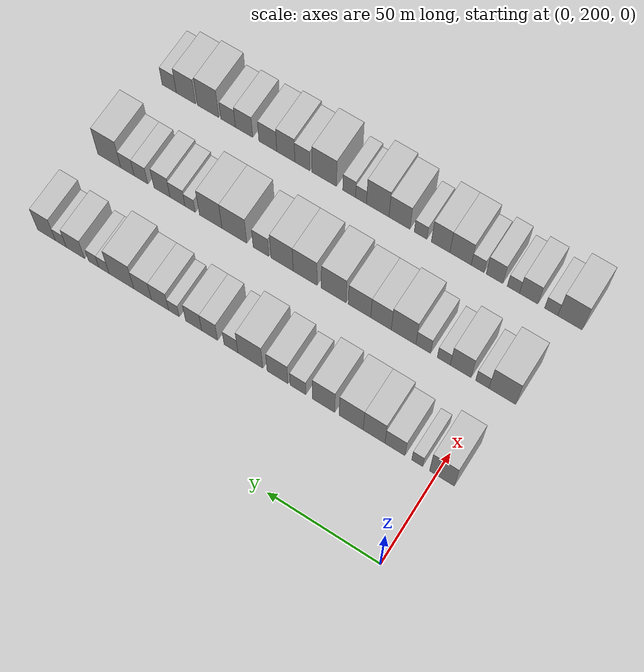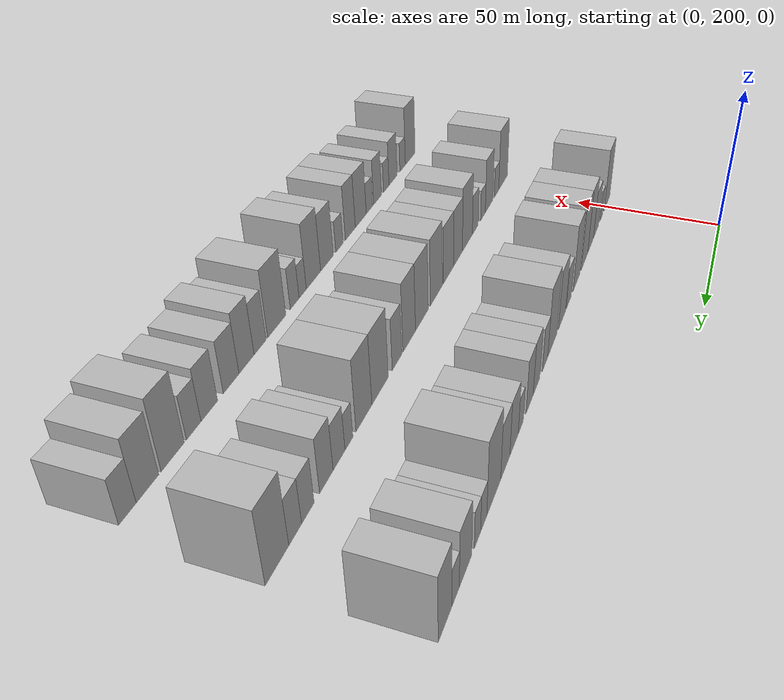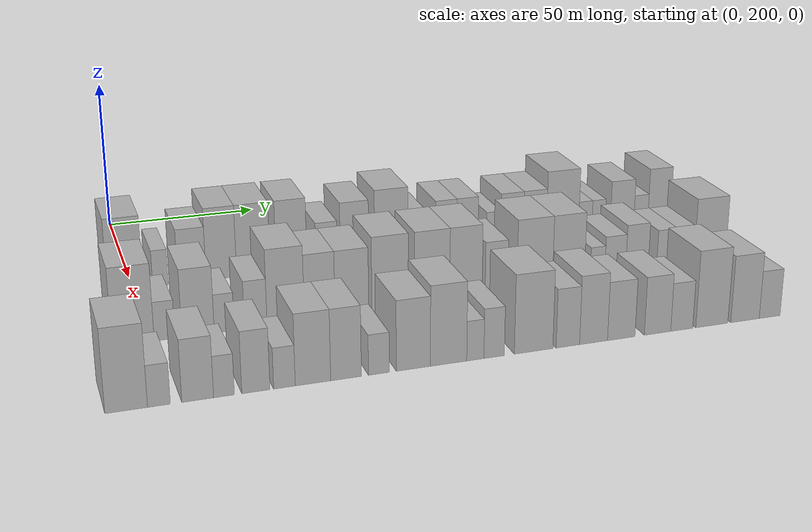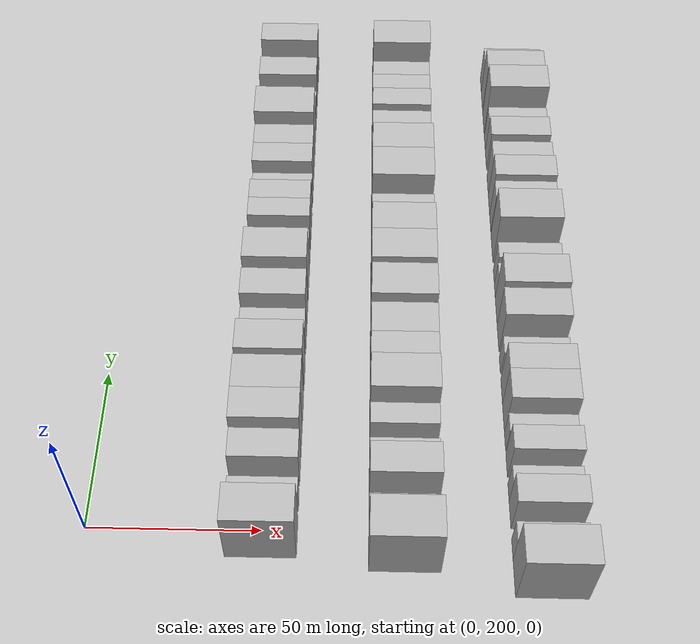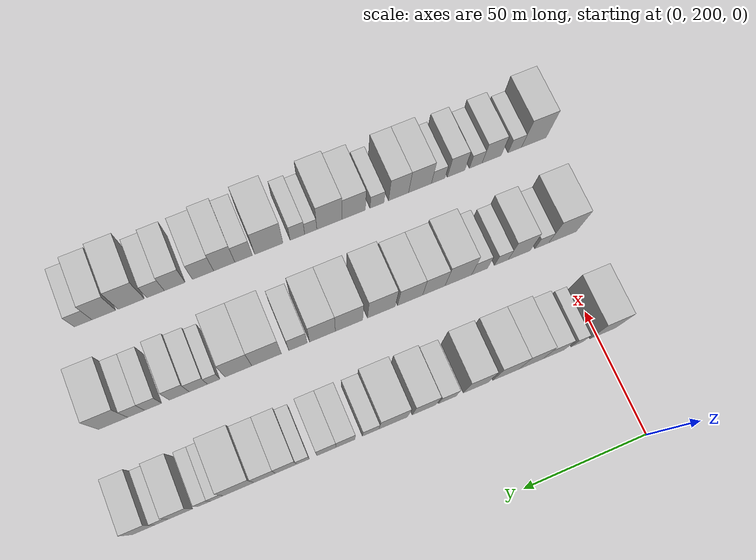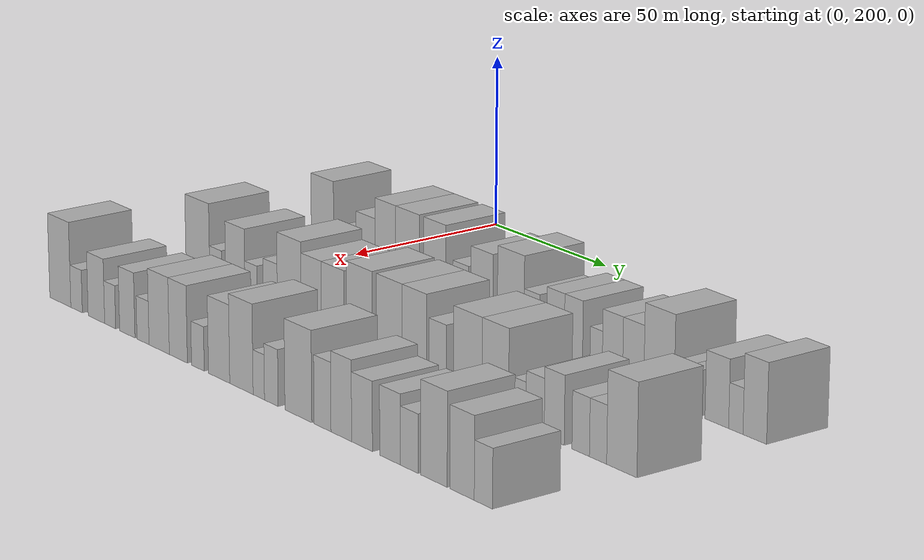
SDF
<sdf version="1.6">
 <world name="default">
  <model name="building_62">
   <static>1</static>
   <pose>50.0000 197.6228 0 0.000000 0.000000 0.000000</pose>
   <link name="link">
    <pose>0 0 12.00 0 0 0</pose>
    <collision name="collision"><geometry><box><size>20.0000 10.9696 24.0000</size></box></geometry></collision>
    <visual name="visual">
     <cast_shadows>0</cast_shadows>
     <geometry><box><size>20.0000 10.9696 24.0000</size></box></geometry>
     <material>
      <script>
       <uri>model://HANNAS_wall/materials/scripts</uri>
       <uri>model://HANNAS_wall/materials/textures</uri>
       <name>vrc/HANNAS_wall</name>
      </script>
     </material>
    </visual>
   </link>
  </model>
  <model name="building_63">
   <static>1</static>
   <pose>50.0000 208.5299 0 0.000000 0.000000 0.000000</pose>
   <link name="link">
    <pose>0 0 6.00 0 0 0</pose>
    <collision name="collision"><geometry><box><size>20.0000 4.8445 12.0000</size></box></geometry></collision>
    <visual name="visual">
     <cast_shadows>0</cast_shadows>
     <geometry><box><size>20.0000 4.8445 12.0000</size></box></geometry>
     <material>
      <script>
       <uri>model://HANNAS_wall/materials/scripts</uri>
       <uri>model://HANNAS_wall/materials/textures</uri>
       <name>vrc/HANNAS_wall</name>
      </script>
     </material>
    </visual>
   </link>
  </model>
  <model name="building_64">
   <static>1</static>
   <pose>50.0000 218.4184 0 0.000000 0.000000 0.000000</pose>
   <link name="link">
    <pose>0 0 9.00 0 0 0</pose>
    <collision name="collision"><geometry><box><size>20.0000 8.9326 18.0000</size></box></geometry></collision>
    <visual name="visual">
     <cast_shadows>0</cast_shadows>
     <geometry><box><size>20.0000 8.9326 18.0000</size></box></geometry>
     <material>
      <script>
       <uri>model://HANNAS_wall/materials/scripts</uri>
       <uri>model://HANNAS_wall/materials/textures</uri>
       <name>vrc/HANNAS_wall</name>
      </script>
     </material>
    </visual>
   </link>
  </model>
  <model name="building_65">
   <static>1</static>
   <pose>50.0000 227.7537 0 0.000000 0.000000 0.000000</pose>
   <link name="link">
    <pose>0 0 12.00 0 0 0</pose>
    <collision name="collision"><geometry><box><size>20.0000 9.7380 24.0000</size></box></geometry></collision>
    <visual name="visual">
     <cast_shadows>0</cast_shadows>
     <geometry><box><size>20.0000 9.7380 24.0000</size></box></geometry>
     <material>
      <script>
       <uri>model://HANNAS_wall/materials/scripts</uri>
       <uri>model://HANNAS_wall/materials/textures</uri>
       <name>vrc/HANNAS_wall</name>
      </script>
     </material>
    </visual>
   </link>
  </model>
  <model name="building_66">
   <static>1</static>
   <pose>50.0000 238.0365 0 0.000000 0.000000 0.000000</pose>
   <link name="link">
    <pose>0 0 12.00 0 0 0</pose>
    <collision name="collision"><geometry><box><size>20.0000 10.8275 24.0000</size></box></geometry></collision>
    <visual name="visual">
     <cast_shadows>0</cast_shadows>
     <geometry><box><size>20.0000 10.8275 24.0000</size></box></geometry>
     <material>
      <script>
       <uri>model://HANNAS_wall/materials/scripts</uri>
       <uri>model://HANNAS_wall/materials/textures</uri>
       <name>vrc/HANNAS_wall</name>
      </script>
     </material>
    </visual>
   </link>
  </model>
  <model name="building_67">
   <static>1</static>
   <pose>50.0000 250.5068 0 0.000000 0.000000 0.000000</pose>
   <link name="link">
    <pose>0 0 12.00 0 0 0</pose>
    <collision name="collision"><geometry><box><size>20.0000 10.1131 24.0000</size></box></geometry></collision>
    <visual name="visual">
     <cast_shadows>0</cast_shadows>
     <geometry><box><size>20.0000 10.1131 24.0000</size></box></geometry>
     <material>
      <script>
       <uri>model://HANNAS_wall/materials/scripts</uri>
       <uri>model://HANNAS_wall/materials/textures</uri>
       <name>vrc/HANNAS_wall</name>
      </script>
     </material>
    </visual>
   </link>
  </model>
  <model name="building_68">
   <static>1</static>
   <pose>50.0000 262.1444 0 0.000000 0.000000 0.000000</pose>
   <link name="link">
    <pose>0 0 7.50 0 0 0</pose>
    <collision name="collision"><geometry><box><size>20.0000 7.1622 15.0000</size></box></geometry></collision>
    <visual name="visual">
     <cast_shadows>0</cast_shadows>
     <geometry><box><size>20.0000 7.1622 15.0000</size></box></geometry>
     <material>
      <script>
       <uri>model://HANNAS_wall/materials/scripts</uri>
       <uri>model://HANNAS_wall/materials/textures</uri>
       <name>vrc/HANNAS_wall</name>
      </script>
     </material>
    </visual>
   </link>
  </model>
  <model name="building_69">
   <static>1</static>
   <pose>50.0000 271.5165 0 0.000000 0.000000 0.000000</pose>
   <link name="link">
    <pose>0 0 10.50 0 0 0</pose>
    <collision name="collision"><geometry><box><size>20.0000 9.5820 21.0000</size></box></geometry></collision>
    <visual name="visual">
     <cast_shadows>0</cast_shadows>
     <geometry><box><size>20.0000 9.5820 21.0000</size></box></geometry>
     <material>
      <script>
       <uri>model://HANNAS_wall/materials/scripts</uri>
       <uri>model://HANNAS_wall/materials/textures</uri>
       <name>vrc/HANNAS_wall</name>
      </script>
     </material>
    </visual>
   </link>
  </model>
  <model name="building_70">
   <static>1</static>
   <pose>50.0000 284.0442 0 0.000000 0.000000 0.000000</pose>
   <link name="link">
    <pose>0 0 12.00 0 0 0</pose>
    <collision name="collision"><geometry><box><size>20.0000 11.4734 24.0000</size></box></geometry></collision>
    <visual name="visual">
     <cast_shadows>0</cast_shadows>
     <geometry><box><size>20.0000 11.4734 24.0000</size></box></geometry>
     <material>
      <script>
       <uri>model://HANNAS_wall/materials/scripts</uri>
       <uri>model://HANNAS_wall/materials/textures</uri>
       <name>vrc/HANNAS_wall</name>
      </script>
     </material>
    </visual>
   </link>
  </model>
  <model name="building_71">
   <static>1</static>
   <pose>50.0000 293.0265 0 0.000000 0.000000 0.000000</pose>
   <link name="link">
    <pose>0 0 7.50 0 0 0</pose>
    <collision name="collision"><geometry><box><size>20.0000 6.4911 15.0000</size></box></geometry></collision>
    <visual name="visual">
     <cast_shadows>0</cast_shadows>
     <geometry><box><size>20.0000 6.4911 15.0000</size></box></geometry>
     <material>
      <script>
       <uri>model://HANNAS_wall/materials/scripts</uri>
       <uri>model://HANNAS_wall/materials/textures</uri>
       <name>vrc/HANNAS_wall</name>
      </script>
     </material>
    </visual>
   </link>
  </model>
  <model name="building_72">
   <static>1</static>
   <pose>50.0000 302.9918 0 0.000000 0.000000 0.000000</pose>
   <link name="link">
    <pose>0 0 9.00 0 0 0</pose>
    <collision name="collision"><geometry><box><size>20.0000 7.4396 18.0000</size></box></geometry></collision>
    <visual name="visual">
     <cast_shadows>0</cast_shadows>
     <geometry><box><size>20.0000 7.4396 18.0000</size></box></geometry>
     <material>
      <script>
       <uri>model://HANNAS_wall/materials/scripts</uri>
       <uri>model://HANNAS_wall/materials/textures</uri>
       <name>vrc/HANNAS_wall</name>
      </script>
     </material>
    </visual>
   </link>
  </model>
  <model name="building_73">
   <static>1</static>
   <pose>50.0000 310.4910 0 0.000000 0.000000 0.000000</pose>
   <link name="link">
    <pose>0 0 9.00 0 0 0</pose>
    <collision name="collision"><geometry><box><size>20.0000 7.5588 18.0000</size></box></geometry></collision>
    <visual name="visual">
     <cast_shadows>0</cast_shadows>
     <geometry><box><size>20.0000 7.5588 18.0000</size></box></geometry>
     <material>
      <script>
       <uri>model://HANNAS_wall/materials/scripts</uri>
       <uri>model://HANNAS_wall/materials/textures</uri>
       <name>vrc/HANNAS_wall</name>
      </script>
     </material>
    </visual>
   </link>
  </model>
  <model name="building_74">
   <static>1</static>
   <pose>50.0000 319.7879 0 0.000000 0.000000 0.000000</pose>
   <link name="link">
    <pose>0 0 6.00 0 0 0</pose>
    <collision name="collision"><geometry><box><size>20.0000 5.0349 12.0000</size></box></geometry></collision>
    <visual name="visual">
     <cast_shadows>0</cast_shadows>
     <geometry><box><size>20.0000 5.0349 12.0000</size></box></geometry>
     <material>
      <script>
       <uri>model://HANNAS_wall/materials/scripts</uri>
       <uri>model://HANNAS_wall/materials/textures</uri>
       <name>vrc/HANNAS_wall</name>
      </script>
     </material>
    </visual>
   </link>
  </model>
  <model name="building_75">
   <static>1</static>
   <pose>50.0000 326.3965 0 0.000000 0.000000 0.000000</pose>
   <link name="link">
    <pose>0 0 9.00 0 0 0</pose>
    <collision name="collision"><geometry><box><size>20.0000 8.1823 18.0000</size></box></geometry></collision>
    <visual name="visual">
     <cast_shadows>0</cast_shadows>
     <geometry><box><size>20.0000 8.1823 18.0000</size></box></geometry>
     <material>
      <script>
       <uri>model://HANNAS_wall/materials/scripts</uri>
       <uri>model://HANNAS_wall/materials/textures</uri>
       <name>vrc/HANNAS_wall</name>
      </script>
     </material>
    </visual>
   </link>
  </model>
  <model name="building_76">
   <static>1</static>
   <pose>50.0000 334.6937 0 0.000000 0.000000 0.000000</pose>
   <link name="link">
    <pose>0 0 9.00 0 0 0</pose>
    <collision name="collision"><geometry><box><size>20.0000 8.4121 18.0000</size></box></geometry></collision>
    <visual name="visual">
     <cast_shadows>0</cast_shadows>
     <geometry><box><size>20.0000 8.4121 18.0000</size></box></geometry>
     <material>
      <script>
       <uri>model://HANNAS_wall/materials/scripts</uri>
       <uri>model://HANNAS_wall/materials/textures</uri>
       <name>vrc/HANNAS_wall</name>
      </script>
     </material>
    </visual>
   </link>
  </model>
  <model name="building_77">
   <static>1</static>
   <pose>50.0000 344.8178 0 0.000000 0.000000 0.000000</pose>
   <link name="link">
    <pose>0 0 12.00 0 0 0</pose>
    <collision name="collision"><geometry><box><size>20.0000 11.8361 24.0000</size></box></geometry></collision>
    <visual name="visual">
     <cast_shadows>0</cast_shadows>
     <geometry><box><size>20.0000 11.8361 24.0000</size></box></geometry>
     <material>
      <script>
       <uri>model://HANNAS_wall/materials/scripts</uri>
       <uri>model://HANNAS_wall/materials/textures</uri>
       <name>vrc/HANNAS_wall</name>
      </script>
     </material>
    </visual>
   </link>
  </model>
  <model name="building_78">
   <static>1</static>
   <pose>50.0000 353.2116 0 0.000000 0.000000 0.000000</pose>
   <link name="link">
    <pose>0 0 6.00 0 0 0</pose>
    <collision name="collision"><geometry><box><size>20.0000 4.9516 12.0000</size></box></geometry></collision>
    <visual name="visual">
     <cast_shadows>0</cast_shadows>
     <geometry><box><size>20.0000 4.9516 12.0000</size></box></geometry>
     <material>
      <script>
       <uri>model://HANNAS_wall/materials/scripts</uri>
       <uri>model://HANNAS_wall/materials/textures</uri>
       <name>vrc/HANNAS_wall</name>
      </script>
     </material>
    </visual>
   </link>
  </model>
  <model name="building_79">
   <static>1</static>
   <pose>50.0000 358.1471 0 0.000000 0.000000 0.000000</pose>
   <link name="link">
    <pose>0 0 6.00 0 0 0</pose>
    <collision name="collision"><geometry><box><size>20.0000 4.9195 12.0000</size></box></geometry></collision>
    <visual name="visual">
     <cast_shadows>0</cast_shadows>
     <geometry><box><size>20.0000 4.9195 12.0000</size></box></geometry>
     <material>
      <script>
       <uri>model://HANNAS_wall/materials/scripts</uri>
       <uri>model://HANNAS_wall/materials/textures</uri>
       <name>vrc/HANNAS_wall</name>
      </script>
     </material>
    </visual>
   </link>
  </model>
  <model name="building_80">
   <static>1</static>
   <pose>50.0000 367.0509 0 0.000000 0.000000 0.000000</pose>
   <link name="link">
    <pose>0 0 9.00 0 0 0</pose>
    <collision name="collision"><geometry><box><size>20.0000 8.8882 18.0000</size></box></geometry></collision>
    <visual name="visual">
     <cast_shadows>0</cast_shadows>
     <geometry><box><size>20.0000 8.8882 18.0000</size></box></geometry>
     <material>
      <script>
       <uri>model://HANNAS_wall/materials/scripts</uri>
       <uri>model://HANNAS_wall/materials/textures</uri>
       <name>vrc/HANNAS_wall</name>
      </script>
     </material>
    </visual>
   </link>
  </model>
  <model name="building_81">
   <static>1</static>
   <pose>50.0000 374.1630 0 0.000000 0.000000 0.000000</pose>
   <link name="link">
    <pose>0 0 6.00 0 0 0</pose>
    <collision name="collision"><geometry><box><size>20.0000 5.3360 12.0000</size></box></geometry></collision>
    <visual name="visual">
     <cast_shadows>0</cast_shadows>
     <geometry><box><size>20.0000 5.3360 12.0000</size></box></geometry>
     <material>
      <script>
       <uri>model://HANNAS_wall/materials/scripts</uri>
       <uri>model://HANNAS_wall/materials/textures</uri>
       <name>vrc/HANNAS_wall</name>
      </script>
     </material>
    </visual>
   </link>
  </model>
  <model name="building_82">
   <static>1</static>
   <pose>50.0000 381.1756 0 0.000000 0.000000 0.000000</pose>
   <link name="link">
    <pose>0 0 10.50 0 0 0</pose>
    <collision name="collision"><geometry><box><size>20.0000 8.6892 21.0000</size></box></geometry></collision>
    <visual name="visual">
     <cast_shadows>0</cast_shadows>
     <geometry><box><size>20.0000 8.6892 21.0000</size></box></geometry>
     <material>
      <script>
       <uri>model://HANNAS_wall/materials/scripts</uri>
       <uri>model://HANNAS_wall/materials/textures</uri>
       <name>vrc/HANNAS_wall</name>
      </script>
     </material>
    </visual>
   </link>
  </model>
  <model name="building_150">
   <static>1</static>
   <pose>90.0000 194.7489 0 0.000000 0.000000 0.000000</pose>
   <link name="link">
    <pose>0 0 12.00 0 0 0</pose>
    <collision name="collision"><geometry><box><size>20.0000 11.9108 24.0000</size></box></geometry></collision>
    <visual name="visual">
     <cast_shadows>0</cast_shadows>
     <geometry><box><size>20.0000 11.9108 24.0000</size></box></geometry>
     <material>
      <script>
       <uri>model://HANNAS_wall/materials/scripts</uri>
       <uri>model://HANNAS_wall/materials/textures</uri>
       <name>vrc/HANNAS_wall</name>
      </script>
     </material>
    </visual>
   </link>
  </model>
  <model name="building_151">
   <static>1</static>
   <pose>90.0000 203.6814 0 0.000000 0.000000 0.000000</pose>
   <link name="link">
    <pose>0 0 6.00 0 0 0</pose>
    <collision name="collision"><geometry><box><size>20.0000 5.9541 12.0000</size></box></geometry></collision>
    <visual name="visual">
     <cast_shadows>0</cast_shadows>
     <geometry><box><size>20.0000 5.9541 12.0000</size></box></geometry>
     <material>
      <script>
       <uri>model://HANNAS_wall/materials/scripts</uri>
       <uri>model://HANNAS_wall/materials/textures</uri>
       <name>vrc/HANNAS_wall</name>
      </script>
     </material>
    </visual>
   </link>
  </model>
  <model name="building_152">
   <static>1</static>
   <pose>90.0000 213.3597 0 0.000000 0.000000 0.000000</pose>
   <link name="link">
    <pose>0 0 10.50 0 0 0</pose>
    <collision name="collision"><geometry><box><size>20.0000 9.4025 21.0000</size></box></geometry></collision>
    <visual name="visual">
     <cast_shadows>0</cast_shadows>
     <geometry><box><size>20.0000 9.4025 21.0000</size></box></geometry>
     <material>
      <script>
       <uri>model://HANNAS_wall/materials/scripts</uri>
       <uri>model://HANNAS_wall/materials/textures</uri>
       <name>vrc/HANNAS_wall</name>
      </script>
     </material>
    </visual>
   </link>
  </model>
  <model name="building_153">
   <static>1</static>
   <pose>90.0000 220.9884 0 0.000000 0.000000 0.000000</pose>
   <link name="link">
    <pose>0 0 6.00 0 0 0</pose>
    <collision name="collision"><geometry><box><size>20.0000 5.8549 12.0000</size></box></geometry></collision>
    <visual name="visual">
     <cast_shadows>0</cast_shadows>
     <geometry><box><size>20.0000 5.8549 12.0000</size></box></geometry>
     <material>
      <script>
       <uri>model://HANNAS_wall/materials/scripts</uri>
       <uri>model://HANNAS_wall/materials/textures</uri>
       <name>vrc/HANNAS_wall</name>
      </script>
     </material>
    </visual>
   </link>
  </model>
  <model name="building_154">
   <static>1</static>
   <pose>90.0000 230.2766 0 0.000000 0.000000 0.000000</pose>
   <link name="link">
    <pose>0 0 7.50 0 0 0</pose>
    <collision name="collision"><geometry><box><size>20.0000 6.7215 15.0000</size></box></geometry></collision>
    <visual name="visual">
     <cast_shadows>0</cast_shadows>
     <geometry><box><size>20.0000 6.7215 15.0000</size></box></geometry>
     <material>
      <script>
       <uri>model://HANNAS_wall/materials/scripts</uri>
       <uri>model://HANNAS_wall/materials/textures</uri>
       <name>vrc/HANNAS_wall</name>
      </script>
     </material>
    </visual>
   </link>
  </model>
  <model name="building_155">
   <static>1</static>
   <pose>90.0000 239.2323 0 0.000000 0.000000 0.000000</pose>
   <link name="link">
    <pose>0 0 12.00 0 0 0</pose>
    <collision name="collision"><geometry><box><size>20.0000 11.1899 24.0000</size></box></geometry></collision>
    <visual name="visual">
     <cast_shadows>0</cast_shadows>
     <geometry><box><size>20.0000 11.1899 24.0000</size></box></geometry>
     <material>
      <script>
       <uri>model://HANNAS_wall/materials/scripts</uri>
       <uri>model://HANNAS_wall/materials/textures</uri>
       <name>vrc/HANNAS_wall</name>
      </script>
     </material>
    </visual>
   </link>
  </model>
  <model name="building_156">
   <static>1</static>
   <pose>90.0000 249.5236 0 0.000000 0.000000 0.000000</pose>
   <link name="link">
    <pose>0 0 10.50 0 0 0</pose>
    <collision name="collision"><geometry><box><size>20.0000 9.3928 21.0000</size></box></geometry></collision>
    <visual name="visual">
     <cast_shadows>0</cast_shadows>
     <geometry><box><size>20.0000 9.3928 21.0000</size></box></geometry>
     <material>
      <script>
       <uri>model://HANNAS_wall/materials/scripts</uri>
       <uri>model://HANNAS_wall/materials/textures</uri>
       <name>vrc/HANNAS_wall</name>
      </script>
     </material>
    </visual>
   </link>
  </model>
  <model name="building_157">
   <static>1</static>
   <pose>90.0000 259.4182 0 0.000000 0.000000 0.000000</pose>
   <link name="link">
    <pose>0 0 10.50 0 0 0</pose>
    <collision name="collision"><geometry><box><size>20.0000 10.3963 21.0000</size></box></geometry></collision>
    <visual name="visual">
     <cast_shadows>0</cast_shadows>
     <geometry><box><size>20.0000 10.3963 21.0000</size></box></geometry>
     <material>
      <script>
       <uri>model://HANNAS_wall/materials/scripts</uri>
       <uri>model://HANNAS_wall/materials/textures</uri>
       <name>vrc/HANNAS_wall</name>
      </script>
     </material>
    </visual>
   </link>
  </model>
  <model name="building_158">
   <static>1</static>
   <pose>90.0000 271.3503 0 0.000000 0.000000 0.000000</pose>
   <link name="link">
    <pose>0 0 12.00 0 0 0</pose>
    <collision name="collision"><geometry><box><size>20.0000 11.4679 24.0000</size></box></geometry></collision>
    <visual name="visual">
     <cast_shadows>0</cast_shadows>
     <geometry><box><size>20.0000 11.4679 24.0000</size></box></geometry>
     <material>
      <script>
       <uri>model://HANNAS_wall/materials/scripts</uri>
       <uri>model://HANNAS_wall/materials/textures</uri>
       <name>vrc/HANNAS_wall</name>
      </script>
     </material>
    </visual>
   </link>
  </model>
  <model name="building_159">
   <static>1</static>
   <pose>90.0000 284.6876 0 0.000000 0.000000 0.000000</pose>
   <link name="link">
    <pose>0 0 12.00 0 0 0</pose>
    <collision name="collision"><geometry><box><size>20.0000 11.2068 24.0000</size></box></geometry></collision>
    <visual name="visual">
     <cast_shadows>0</cast_shadows>
     <geometry><box><size>20.0000 11.2068 24.0000</size></box></geometry>
     <material>
      <script>
       <uri>model://HANNAS_wall/materials/scripts</uri>
       <uri>model://HANNAS_wall/materials/textures</uri>
       <name>vrc/HANNAS_wall</name>
      </script>
     </material>
    </visual>
   </link>
  </model>
  <model name="building_160">
   <static>1</static>
   <pose>90.0000 295.5171 0 0.000000 0.000000 0.000000</pose>
   <link name="link">
    <pose>0 0 12.00 0 0 0</pose>
    <collision name="collision"><geometry><box><size>20.0000 10.4522 24.0000</size></box></geometry></collision>
    <visual name="visual">
     <cast_shadows>0</cast_shadows>
     <geometry><box><size>20.0000 10.4522 24.0000</size></box></geometry>
     <material>
      <script>
       <uri>model://HANNAS_wall/materials/scripts</uri>
       <uri>model://HANNAS_wall/materials/textures</uri>
       <name>vrc/HANNAS_wall</name>
      </script>
     </material>
    </visual>
   </link>
  </model>
  <model name="building_161">
   <static>1</static>
   <pose>90.0000 305.4599 0 0.000000 0.000000 0.000000</pose>
   <link name="link">
    <pose>0 0 9.00 0 0 0</pose>
    <collision name="collision"><geometry><box><size>20.0000 7.4334 18.0000</size></box></geometry></collision>
    <visual name="visual">
     <cast_shadows>0</cast_shadows>
     <geometry><box><size>20.0000 7.4334 18.0000</size></box></geometry>
     <material>
      <script>
       <uri>model://HANNAS_wall/materials/scripts</uri>
       <uri>model://HANNAS_wall/materials/textures</uri>
       <name>vrc/HANNAS_wall</name>
      </script>
     </material>
    </visual>
   </link>
  </model>
  <model name="building_162">
   <static>1</static>
   <pose>90.0000 318.1151 0 0.000000 0.000000 0.000000</pose>
   <link name="link">
    <pose>0 0 12.00 0 0 0</pose>
    <collision name="collision"><geometry><box><size>20.0000 11.8770 24.0000</size></box></geometry></collision>
    <visual name="visual">
     <cast_shadows>0</cast_shadows>
     <geometry><box><size>20.0000 11.8770 24.0000</size></box></geometry>
     <material>
      <script>
       <uri>model://HANNAS_wall/materials/scripts</uri>
       <uri>model://HANNAS_wall/materials/textures</uri>
       <name>vrc/HANNAS_wall</name>
      </script>
     </material>
    </visual>
   </link>
  </model>
  <model name="building_163">
   <static>1</static>
   <pose>90.0000 329.4467 0 0.000000 0.000000 0.000000</pose>
   <link name="link">
    <pose>0 0 12.00 0 0 0</pose>
    <collision name="collision"><geometry><box><size>20.0000 10.7861 24.0000</size></box></geometry></collision>
    <visual name="visual">
     <cast_shadows>0</cast_shadows>
     <geometry><box><size>20.0000 10.7861 24.0000</size></box></geometry>
     <material>
      <script>
       <uri>model://HANNAS_wall/materials/scripts</uri>
       <uri>model://HANNAS_wall/materials/textures</uri>
       <name>vrc/HANNAS_wall</name>
      </script>
     </material>
    </visual>
   </link>
  </model>
  <model name="building_164">
   <static>1</static>
   <pose>90.0000 339.3362 0 0.000000 0.000000 0.000000</pose>
   <link name="link">
    <pose>0 0 6.00 0 0 0</pose>
    <collision name="collision"><geometry><box><size>20.0000 4.9928 12.0000</size></box></geometry></collision>
    <visual name="visual">
     <cast_shadows>0</cast_shadows>
     <geometry><box><size>20.0000 4.9928 12.0000</size></box></geometry>
     <material>
      <script>
       <uri>model://HANNAS_wall/materials/scripts</uri>
       <uri>model://HANNAS_wall/materials/textures</uri>
       <name>vrc/HANNAS_wall</name>
      </script>
     </material>
    </visual>
   </link>
  </model>
  <model name="building_165">
   <static>1</static>
   <pose>90.0000 345.4421 0 0.000000 0.000000 0.000000</pose>
   <link name="link">
    <pose>0 0 7.50 0 0 0</pose>
    <collision name="collision"><geometry><box><size>20.0000 7.2191 15.0000</size></box></geometry></collision>
    <visual name="visual">
     <cast_shadows>0</cast_shadows>
     <geometry><box><size>20.0000 7.2191 15.0000</size></box></geometry>
     <material>
      <script>
       <uri>model://HANNAS_wall/materials/scripts</uri>
       <uri>model://HANNAS_wall/materials/textures</uri>
       <name>vrc/HANNAS_wall</name>
      </script>
     </material>
    </visual>
   </link>
  </model>
  <model name="building_166">
   <static>1</static>
   <pose>90.0000 352.9755 0 0.000000 0.000000 0.000000</pose>
   <link name="link">
    <pose>0 0 9.00 0 0 0</pose>
    <collision name="collision"><geometry><box><size>20.0000 7.8476 18.0000</size></box></geometry></collision>
    <visual name="visual">
     <cast_shadows>0</cast_shadows>
     <geometry><box><size>20.0000 7.8476 18.0000</size></box></geometry>
     <material>
      <script>
       <uri>model://HANNAS_wall/materials/scripts</uri>
       <uri>model://HANNAS_wall/materials/textures</uri>
       <name>vrc/HANNAS_wall</name>
      </script>
     </material>
    </visual>
   </link>
  </model>
  <model name="building_167">
   <static>1</static>
   <pose>90.0000 363.2561 0 0.000000 0.000000 0.000000</pose>
   <link name="link">
    <pose>0 0 7.50 0 0 0</pose>
    <collision name="collision"><geometry><box><size>20.0000 6.7137 15.0000</size></box></geometry></collision>
    <visual name="visual">
     <cast_shadows>0</cast_shadows>
     <geometry><box><size>20.0000 6.7137 15.0000</size></box></geometry>
     <material>
      <script>
       <uri>model://HANNAS_wall/materials/scripts</uri>
       <uri>model://HANNAS_wall/materials/textures</uri>
       <name>vrc/HANNAS_wall</name>
      </script>
     </material>
    </visual>
   </link>
  </model>
  <model name="building_168">
   <static>1</static>
   <pose>90.0000 369.8947 0 0.000000 0.000000 0.000000</pose>
   <link name="link">
    <pose>0 0 7.50 0 0 0</pose>
    <collision name="collision"><geometry><box><size>20.0000 6.5635 15.0000</size></box></geometry></collision>
    <visual name="visual">
     <cast_shadows>0</cast_shadows>
     <geometry><box><size>20.0000 6.5635 15.0000</size></box></geometry>
     <material>
      <script>
       <uri>model://HANNAS_wall/materials/scripts</uri>
       <uri>model://HANNAS_wall/materials/textures</uri>
       <name>vrc/HANNAS_wall</name>
      </script>
     </material>
    </visual>
   </link>
  </model>
  <model name="building_169">
   <static>1</static>
   <pose>90.0000 378.8458 0 0.000000 0.000000 0.000000</pose>
   <link name="link">
    <pose>0 0 12.00 0 0 0</pose>
    <collision name="collision"><geometry><box><size>20.0000 11.3387 24.0000</size></box></geometry></collision>
    <visual name="visual">
     <cast_shadows>0</cast_shadows>
     <geometry><box><size>20.0000 11.3387 24.0000</size></box></geometry>
     <material>
      <script>
       <uri>model://HANNAS_wall/materials/scripts</uri>
       <uri>model://HANNAS_wall/materials/textures</uri>
       <name>vrc/HANNAS_wall</name>
      </script>
     </material>
    </visual>
   </link>
  </model>
  <model name="building_232">
   <static>1</static>
   <pose>130.0000 187.6696 0 0.000000 0.000000 0.000000</pose>
   <link name="link">
    <pose>0 0 12.00 0 0 0</pose>
    <collision name="collision"><geometry><box><size>20.0000 10.9549 24.0000</size></box></geometry></collision>
    <visual name="visual">
     <cast_shadows>0</cast_shadows>
     <geometry><box><size>20.0000 10.9549 24.0000</size></box></geometry>
     <material>
      <script>
       <uri>model://HANNAS_wall/materials/scripts</uri>
       <uri>model://HANNAS_wall/materials/textures</uri>
       <name>vrc/HANNAS_wall</name>
      </script>
     </material>
    </visual>
   </link>
  </model>
  <model name="building_233">
   <static>1</static>
   <pose>130.0000 196.1084 0 0.000000 0.000000 0.000000</pose>
   <link name="link">
    <pose>0 0 6.00 0 0 0</pose>
    <collision name="collision"><geometry><box><size>20.0000 5.9227 12.0000</size></box></geometry></collision>
    <visual name="visual">
     <cast_shadows>0</cast_shadows>
     <geometry><box><size>20.0000 5.9227 12.0000</size></box></geometry>
     <material>
      <script>
       <uri>model://HANNAS_wall/materials/scripts</uri>
       <uri>model://HANNAS_wall/materials/textures</uri>
       <name>vrc/HANNAS_wall</name>
      </script>
     </material>
    </visual>
   </link>
  </model>
  <model name="building_234">
   <static>1</static>
   <pose>130.0000 206.2641 0 0.000000 0.000000 0.000000</pose>
   <link name="link">
    <pose>0 0 9.00 0 0 0</pose>
    <collision name="collision"><geometry><box><size>20.0000 8.3886 18.0000</size></box></geometry></collision>
    <visual name="visual">
     <cast_shadows>0</cast_shadows>
     <geometry><box><size>20.0000 8.3886 18.0000</size></box></geometry>
     <material>
      <script>
       <uri>model://HANNAS_wall/materials/scripts</uri>
       <uri>model://HANNAS_wall/materials/textures</uri>
       <name>vrc/HANNAS_wall</name>
      </script>
     </material>
    </visual>
   </link>
  </model>
  <model name="building_235">
   <static>1</static>
   <pose>130.0000 213.2205 0 0.000000 0.000000 0.000000</pose>
   <link name="link">
    <pose>0 0 6.00 0 0 0</pose>
    <collision name="collision"><geometry><box><size>20.0000 5.5241 12.0000</size></box></geometry></collision>
    <visual name="visual">
     <cast_shadows>0</cast_shadows>
     <geometry><box><size>20.0000 5.5241 12.0000</size></box></geometry>
     <material>
      <script>
       <uri>model://HANNAS_wall/materials/scripts</uri>
       <uri>model://HANNAS_wall/materials/textures</uri>
       <name>vrc/HANNAS_wall</name>
      </script>
     </material>
    </visual>
   </link>
  </model>
  <model name="building_236">
   <static>1</static>
   <pose>130.0000 221.7792 0 0.000000 0.000000 0.000000</pose>
   <link name="link">
    <pose>0 0 9.00 0 0 0</pose>
    <collision name="collision"><geometry><box><size>20.0000 7.5933 18.0000</size></box></geometry></collision>
    <visual name="visual">
     <cast_shadows>0</cast_shadows>
     <geometry><box><size>20.0000 7.5933 18.0000</size></box></geometry>
     <material>
      <script>
       <uri>model://HANNAS_wall/materials/scripts</uri>
       <uri>model://HANNAS_wall/materials/textures</uri>
       <name>vrc/HANNAS_wall</name>
      </script>
     </material>
    </visual>
   </link>
  </model>
  <model name="building_237">
   <static>1</static>
   <pose>130.0000 229.5260 0 0.000000 0.000000 0.000000</pose>
   <link name="link">
    <pose>0 0 6.00 0 0 0</pose>
    <collision name="collision"><geometry><box><size>20.0000 5.9003 12.0000</size></box></geometry></collision>
    <visual name="visual">
     <cast_shadows>0</cast_shadows>
     <geometry><box><size>20.0000 5.9003 12.0000</size></box></geometry>
     <material>
      <script>
       <uri>model://HANNAS_wall/materials/scripts</uri>
       <uri>model://HANNAS_wall/materials/textures</uri>
       <name>vrc/HANNAS_wall</name>
      </script>
     </material>
    </visual>
   </link>
  </model>
  <model name="building_238">
   <static>1</static>
   <pose>130.0000 237.3794 0 0.000000 0.000000 0.000000</pose>
   <link name="link">
    <pose>0 0 10.50 0 0 0</pose>
    <collision name="collision"><geometry><box><size>20.0000 9.8065 21.0000</size></box></geometry></collision>
    <visual name="visual">
     <cast_shadows>0</cast_shadows>
     <geometry><box><size>20.0000 9.8065 21.0000</size></box></geometry>
     <material>
      <script>
       <uri>model://HANNAS_wall/materials/scripts</uri>
       <uri>model://HANNAS_wall/materials/textures</uri>
       <name>vrc/HANNAS_wall</name>
      </script>
     </material>
    </visual>
   </link>
  </model>
  <model name="building_239">
   <static>1</static>
   <pose>130.0000 246.5856 0 0.000000 0.000000 0.000000</pose>
   <link name="link">
    <pose>0 0 10.50 0 0 0</pose>
    <collision name="collision"><geometry><box><size>20.0000 8.6058 21.0000</size></box></geometry></collision>
    <visual name="visual">
     <cast_shadows>0</cast_shadows>
     <geometry><box><size>20.0000 8.6058 21.0000</size></box></geometry>
     <material>
      <script>
       <uri>model://HANNAS_wall/materials/scripts</uri>
       <uri>model://HANNAS_wall/materials/textures</uri>
       <name>vrc/HANNAS_wall</name>
      </script>
     </material>
    </visual>
   </link>
  </model>
  <model name="building_240">
   <static>1</static>
   <pose>130.0000 255.8572 0 0.000000 0.000000 0.000000</pose>
   <link name="link">
    <pose>0 0 6.00 0 0 0</pose>
    <collision name="collision"><geometry><box><size>20.0000 5.9375 12.0000</size></box></geometry></collision>
    <visual name="visual">
     <cast_shadows>0</cast_shadows>
     <geometry><box><size>20.0000 5.9375 12.0000</size></box></geometry>
     <material>
      <script>
       <uri>model://HANNAS_wall/materials/scripts</uri>
       <uri>model://HANNAS_wall/materials/textures</uri>
       <name>vrc/HANNAS_wall</name>
      </script>
     </material>
    </visual>
   </link>
  </model>
  <model name="building_241">
   <static>1</static>
   <pose>130.0000 265.7415 0 0.000000 0.000000 0.000000</pose>
   <link name="link">
    <pose>0 0 10.50 0 0 0</pose>
    <collision name="collision"><geometry><box><size>20.0000 9.8311 21.0000</size></box></geometry></collision>
    <visual name="visual">
     <cast_shadows>0</cast_shadows>
     <geometry><box><size>20.0000 9.8311 21.0000</size></box></geometry>
     <material>
      <script>
       <uri>model://HANNAS_wall/materials/scripts</uri>
       <uri>model://HANNAS_wall/materials/textures</uri>
       <name>vrc/HANNAS_wall</name>
      </script>
     </material>
    </visual>
   </link>
  </model>
  <model name="building_242">
   <static>1</static>
   <pose>130.0000 275.9695 0 0.000000 0.000000 0.000000</pose>
   <link name="link">
    <pose>0 0 12.00 0 0 0</pose>
    <collision name="collision"><geometry><box><size>20.0000 10.6249 24.0000</size></box></geometry></collision>
    <visual name="visual">
     <cast_shadows>0</cast_shadows>
     <geometry><box><size>20.0000 10.6249 24.0000</size></box></geometry>
     <material>
      <script>
       <uri>model://HANNAS_wall/materials/scripts</uri>
       <uri>model://HANNAS_wall/materials/textures</uri>
       <name>vrc/HANNAS_wall</name>
      </script>
     </material>
    </visual>
   </link>
  </model>
  <model name="building_243">
   <static>1</static>
   <pose>130.0000 283.8337 0 0.000000 0.000000 0.000000</pose>
   <link name="link">
    <pose>0 0 6.00 0 0 0</pose>
    <collision name="collision"><geometry><box><size>20.0000 5.1035 12.0000</size></box></geometry></collision>
    <visual name="visual">
     <cast_shadows>0</cast_shadows>
     <geometry><box><size>20.0000 5.1035 12.0000</size></box></geometry>
     <material>
      <script>
       <uri>model://HANNAS_wall/materials/scripts</uri>
       <uri>model://HANNAS_wall/materials/textures</uri>
       <name>vrc/HANNAS_wall</name>
      </script>
     </material>
    </visual>
   </link>
  </model>
  <model name="building_244">
   <static>1</static>
   <pose>130.0000 289.4293 0 0.000000 0.000000 0.000000</pose>
   <link name="link">
    <pose>0 0 7.50 0 0 0</pose>
    <collision name="collision"><geometry><box><size>20.0000 6.0877 15.0000</size></box></geometry></collision>
    <visual name="visual">
     <cast_shadows>0</cast_shadows>
     <geometry><box><size>20.0000 6.0877 15.0000</size></box></geometry>
     <material>
      <script>
       <uri>model://HANNAS_wall/materials/scripts</uri>
       <uri>model://HANNAS_wall/materials/textures</uri>
       <name>vrc/HANNAS_wall</name>
      </script>
     </material>
    </visual>
   </link>
  </model>
  <model name="building_245">
   <static>1</static>
   <pose>130.0000 301.3262 0 0.000000 0.000000 0.000000</pose>
   <link name="link">
    <pose>0 0 12.00 0 0 0</pose>
    <collision name="collision"><geometry><box><size>20.0000 11.7059 24.0000</size></box></geometry></collision>
    <visual name="visual">
     <cast_shadows>0</cast_shadows>
     <geometry><box><size>20.0000 11.7059 24.0000</size></box></geometry>
     <material>
      <script>
       <uri>model://HANNAS_wall/materials/scripts</uri>
       <uri>model://HANNAS_wall/materials/textures</uri>
       <name>vrc/HANNAS_wall</name>
      </script>
     </material>
    </visual>
   </link>
  </model>
  <model name="building_246">
   <static>1</static>
   <pose>130.0000 311.7933 0 0.000000 0.000000 0.000000</pose>
   <link name="link">
    <pose>0 0 9.00 0 0 0</pose>
    <collision name="collision"><geometry><box><size>20.0000 7.2283 18.0000</size></box></geometry></collision>
    <visual name="visual">
     <cast_shadows>0</cast_shadows>
     <geometry><box><size>20.0000 7.2283 18.0000</size></box></geometry>
     <material>
      <script>
       <uri>model://HANNAS_wall/materials/scripts</uri>
       <uri>model://HANNAS_wall/materials/textures</uri>
       <name>vrc/HANNAS_wall</name>
      </script>
     </material>
    </visual>
   </link>
  </model>
  <model name="building_247">
   <static>1</static>
   <pose>130.0000 319.7660 0 0.000000 0.000000 0.000000</pose>
   <link name="link">
    <pose>0 0 10.50 0 0 0</pose>
    <collision name="collision"><geometry><box><size>20.0000 8.7171 21.0000</size></box></geometry></collision>
    <visual name="visual">
     <cast_shadows>0</cast_shadows>
     <geometry><box><size>20.0000 8.7171 21.0000</size></box></geometry>
     <material>
      <script>
       <uri>model://HANNAS_wall/materials/scripts</uri>
       <uri>model://HANNAS_wall/materials/textures</uri>
       <name>vrc/HANNAS_wall</name>
      </script>
     </material>
    </visual>
   </link>
  </model>
  <model name="building_248">
   <static>1</static>
   <pose>130.0000 328.4604 0 0.000000 0.000000 0.000000</pose>
   <link name="link">
    <pose>0 0 9.00 0 0 0</pose>
    <collision name="collision"><geometry><box><size>20.0000 8.6718 18.0000</size></box></geometry></collision>
    <visual name="visual">
     <cast_shadows>0</cast_shadows>
     <geometry><box><size>20.0000 8.6718 18.0000</size></box></geometry>
     <material>
      <script>
       <uri>model://HANNAS_wall/materials/scripts</uri>
       <uri>model://HANNAS_wall/materials/textures</uri>
       <name>vrc/HANNAS_wall</name>
      </script>
     </material>
    </visual>
   </link>
  </model>
  <model name="building_249">
   <static>1</static>
   <pose>130.0000 340.0282 0 0.000000 0.000000 0.000000</pose>
   <link name="link">
    <pose>0 0 9.00 0 0 0</pose>
    <collision name="collision"><geometry><box><size>20.0000 8.4638 18.0000</size></box></geometry></collision>
    <visual name="visual">
     <cast_shadows>0</cast_shadows>
     <geometry><box><size>20.0000 8.4638 18.0000</size></box></geometry>
     <material>
      <script>
       <uri>model://HANNAS_wall/materials/scripts</uri>
       <uri>model://HANNAS_wall/materials/textures</uri>
       <name>vrc/HANNAS_wall</name>
      </script>
     </material>
    </visual>
   </link>
  </model>
  <model name="building_250">
   <static>1</static>
   <pose>130.0000 347.8209 0 0.000000 0.000000 0.000000</pose>
   <link name="link">
    <pose>0 0 7.50 0 0 0</pose>
    <collision name="collision"><geometry><box><size>20.0000 7.1216 15.0000</size></box></geometry></collision>
    <visual name="visual">
     <cast_shadows>0</cast_shadows>
     <geometry><box><size>20.0000 7.1216 15.0000</size></box></geometry>
     <material>
      <script>
       <uri>model://HANNAS_wall/materials/scripts</uri>
       <uri>model://HANNAS_wall/materials/textures</uri>
       <name>vrc/HANNAS_wall</name>
      </script>
     </material>
    </visual>
   </link>
  </model>
  <model name="building_251">
   <static>1</static>
   <pose>130.0000 357.6557 0 0.000000 0.000000 0.000000</pose>
   <link name="link">
    <pose>0 0 12.00 0 0 0</pose>
    <collision name="collision"><geometry><box><size>20.0000 10.5480 24.0000</size></box></geometry></collision>
    <visual name="visual">
     <cast_shadows>0</cast_shadows>
     <geometry><box><size>20.0000 10.5480 24.0000</size></box></geometry>
     <material>
      <script>
       <uri>model://HANNAS_wall/materials/scripts</uri>
       <uri>model://HANNAS_wall/materials/textures</uri>
       <name>vrc/HANNAS_wall</name>
      </script>
     </material>
    </visual>
   </link>
  </model>
  <model name="building_252">
   <static>1</static>
   <pose>130.0000 368.6816 0 0.000000 0.000000 0.000000</pose>
   <link name="link">
    <pose>0 0 10.50 0 0 0</pose>
    <collision name="collision"><geometry><box><size>20.0000 9.5038 21.0000</size></box></geometry></collision>
    <visual name="visual">
     <cast_shadows>0</cast_shadows>
     <geometry><box><size>20.0000 9.5038 21.0000</size></box></geometry>
     <material>
      <script>
       <uri>model://HANNAS_wall/materials/scripts</uri>
       <uri>model://HANNAS_wall/materials/textures</uri>
       <name>vrc/HANNAS_wall</name>
      </script>
     </material>
    </visual>
   </link>
  </model>
  <model name="building_253">
   <static>1</static>
   <pose>130.0000 376.9400 0 0.000000 0.000000 0.000000</pose>
   <link name="link">
    <pose>0 0 7.50 0 0 0</pose>
    <collision name="collision"><geometry><box><size>20.0000 7.0129 15.0000</size></box></geometry></collision>
    <visual name="visual">
     <cast_shadows>0</cast_shadows>
     <geometry><box><size>20.0000 7.0129 15.0000</size></box></geometry>
     <material>
      <script>
       <uri>model://HANNAS_wall/materials/scripts</uri>
       <uri>model://HANNAS_wall/materials/textures</uri>
       <name>vrc/HANNAS_wall</name>
      </script>
     </material>
    </visual>
   </link>
  </model>
 </world>
</sdf>
